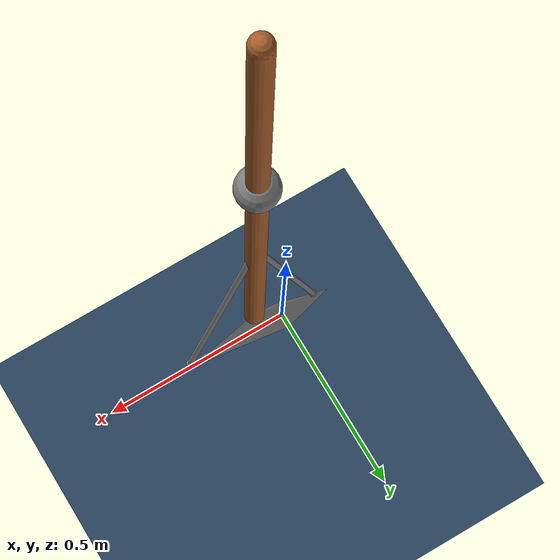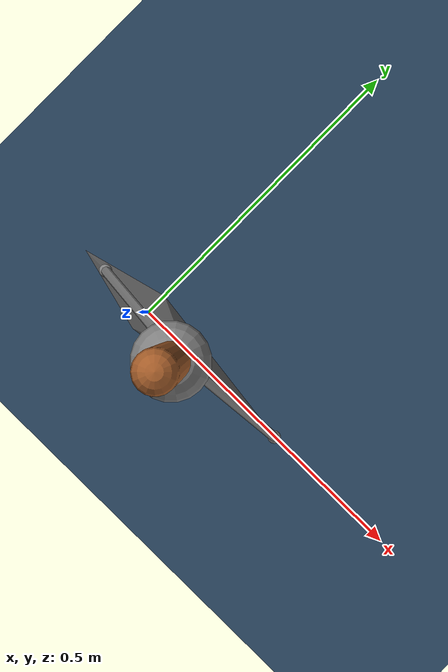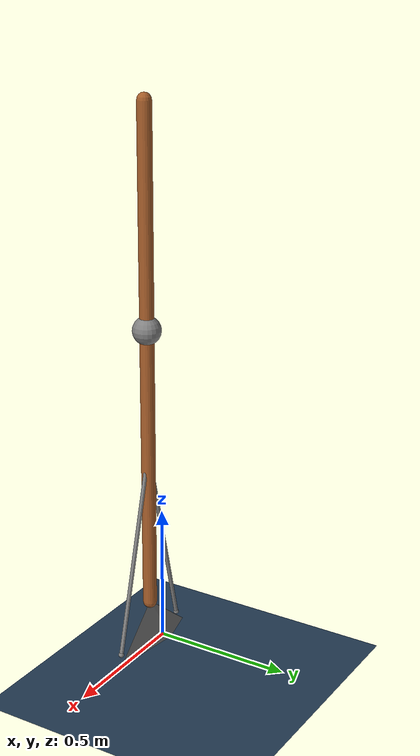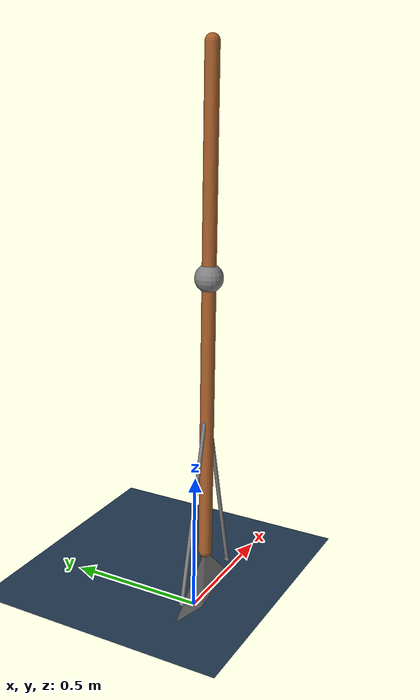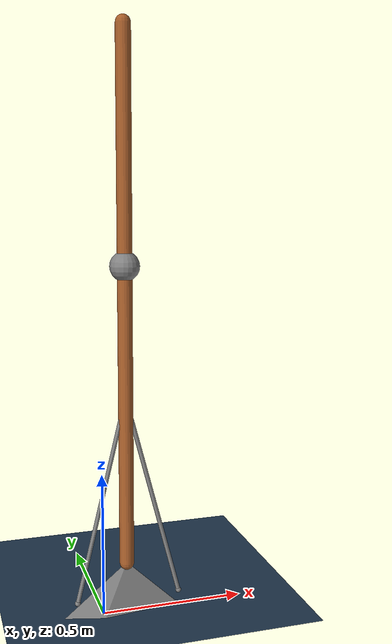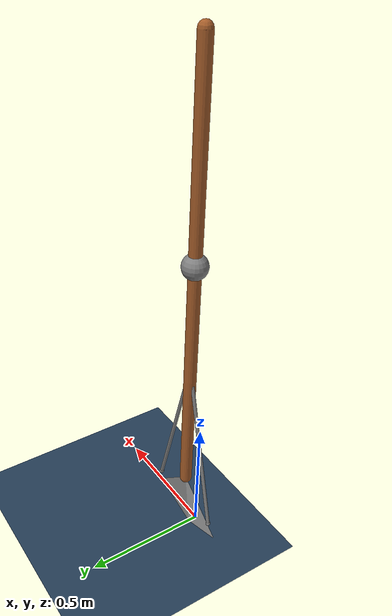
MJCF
<mujoco model="initial_humanoid">

  <option gravity="0 0 -9.81">

    <flag sensornoise="enable" />
  </option>

  <visual>
    <map zfar="30" />

    <rgba haze="0.15 0.25 0.35 1" />

  </visual>

  <statistic center="0 0 0.7" />

  <asset>

    <texture type="skybox" builtin="gradient" rgb1=".3 .5 .7" rgb2="0 0 0" width="32" height="512" />

    <texture name="body" type="cube" builtin="flat" mark="cross" width="128" height="128" rgb1="0.8 0.6 0.4" rgb2="0.8 0.6 0.4" markrgb="1 1 1" random="0.01" />
    <material name="body" texture="body" texuniform="true" rgba="0.8 0.6 .4 1" />

    <texture name="grid" type="2d" builtin="checker" width="512" height="512" rgb1=".1 .2 .3" rgb2=".2 .3 .4" />
    <material name="grid" texture="grid" texrepeat="1 1" texuniform="true" reflectance=".2" />

    <mesh name="foot_mesh" vertex="-0.13528 0 0  0.27056 0 0  0 -0.035 0  0 0.035 0  0.0838736 0 0.178" />
  </asset>

  <default>

    <default class="body">

      <geom type="capsule" mass="10" condim="1" friction="0.7 0.005 0.0001" solimp=".9 .99 .003" solref=".015 1" material="body" group="1" />

      <default class="shin">
        <geom fromto="0 0 0.1 0 0 0" size="0.025" />
      </default>

    </default>
  </default>

	<worldbody>

      <geom name="ground" size="0 0 .05" type="plane" material="grid" condim="3" friction="0.99 0.99 0.99" solimp=".9 .99 .003" solref=".015 1" />

      <light name="spotlight" mode="targetbodycom" target="foot" diffuse=".8 .8 .8" specular="0.3 0.3 0.3" pos="0 -6 4" cutoff="30" />

        <body name="foot" pos="0 0 0">

          <joint name="rotation_dof" type="hinge" axis="0 -1 0" pos="-0.27056 0 0.035" />
          <joint type="slide" name="joint_slide_x" axis="-1 0 0" pos="0.13528 0 0.035" />
          <joint type="slide" name="joint_slide_z" axis="0 0 1" pos="0.13528 0 0.035" />

          <geom type="mesh" mesh="foot_mesh" name="foot_geom" />

          <site name="front_foot_site" pos="-0.09018666666666668 0 0.05" size="0.01 0.01 0.01" />
          <site name="back_foot_site" pos="0.27056 0 0.05" size="0.01 0.01 0.01" />

          <body name="shin_body" pos="0.0838736 0 0.178">

            <joint type="hinge" name="ankle_hinge" axis="0 -1 0" pos="0 0 0" />
            <geom name="shin_geom" class="shin" mass="0" fromto="0 0 1.78 0 0 0" />
            <geom name="m_body" type="sphere" size="0.05" pos="0 0 1.0234999999999999" mass="77.68" />
            <site name="front_shin_site" pos="-0.0125 0 0.534" size="0.01 0.01 0.01" />
            <site name="back_shin_site" pos="0.0125 0 0.534" size="0.01 0.01 0.01" />

          </body>

        </body>

	</worldbody>

  <tendon>
    <spatial name="front_tendon" limited="true" range="0.1 0.7" width="0.0075" springlength="-1" stiffness="1">
      <site site="front_foot_site" />
      <site site="front_shin_site" />
    </spatial>
  </tendon>

  <tendon>
    <spatial name="back_tendon" limited="true" range="0.1 0.7" width="0.0075" springlength="-1" stiffness="1">
      <site site="back_foot_site" />
      <site site="back_shin_site" />
    </spatial>
  </tendon>

  <contact>

    <pair name="foot_ground_friction" geom1="foot_geom" geom2="ground" friction="0.9 0.9 0.99 0.9 0.9" />
  </contact>

	<actuator>

      <muscle name="front_muscle" tendon="front_tendon" force="750" />
      <muscle name="back_muscle" tendon="back_tendon" force="750" />
  </actuator>

	<sensor>
      <jointpos joint="ankle_hinge" />
	</sensor>

</mujoco>
